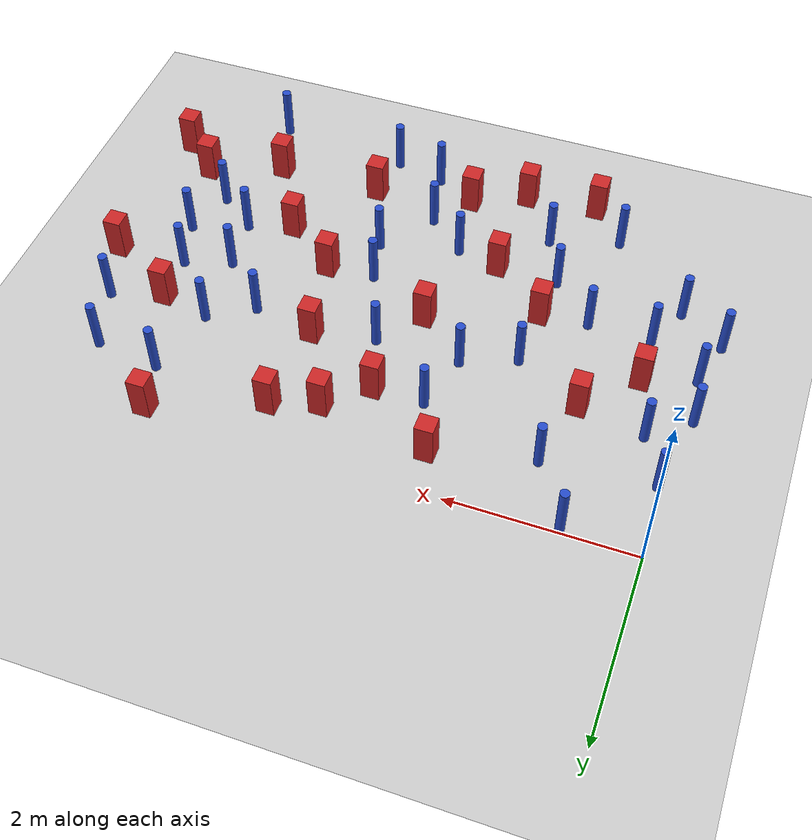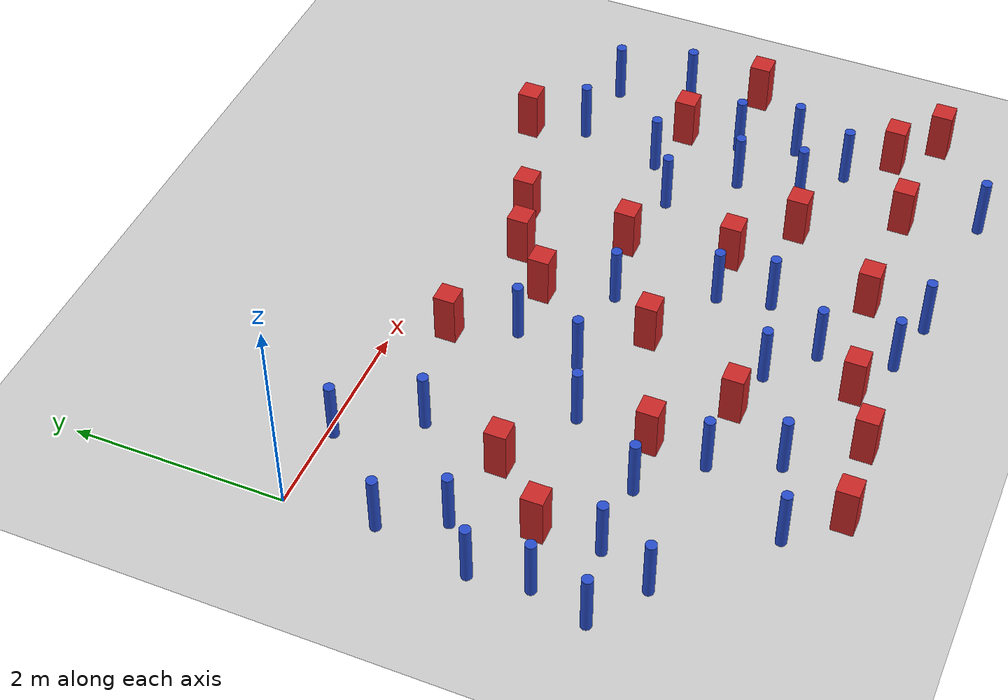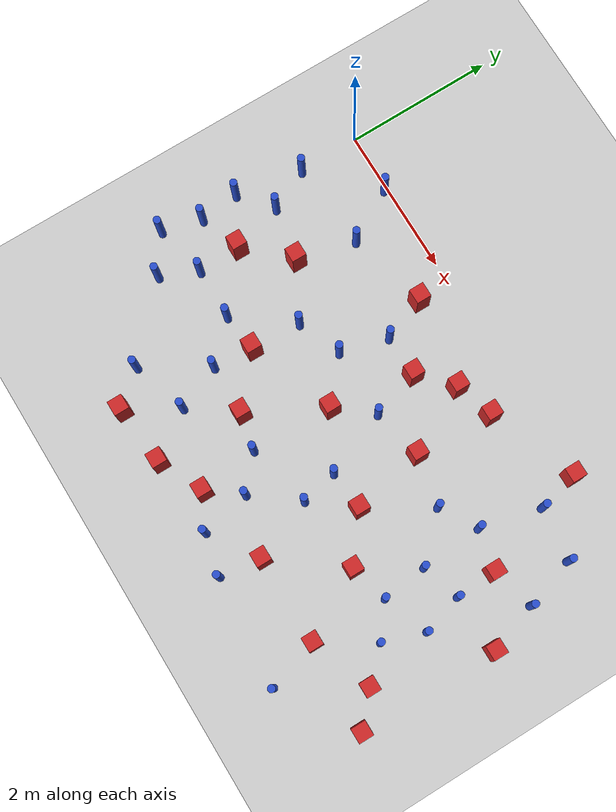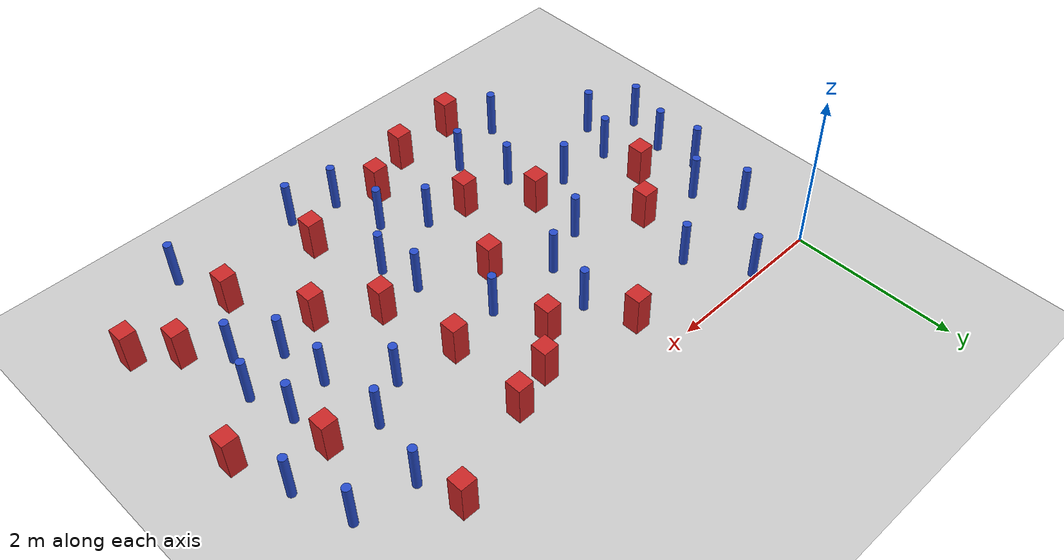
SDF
<sdf version="1.6">
 <world name="default">
  <model name="ground_plane">
   <static>1</static>
   <link name="link">
    <collision name="collision">
     <geometry><plane><normal>0 0 1</normal><size>100 100</size></plane></geometry>
     <surface><friction><ode><mu>100</mu><mu2>50</mu2></ode></friction></surface>
    </collision>
    <visual name="visual">
     <cast_shadows>0</cast_shadows>
     <geometry><plane><normal>0 0 1</normal><size>100 100</size></plane></geometry>
     <material>
      <ambient>1.0 1.0 1.0 1.0</ambient>
      <diffuse>0.8 0.8 0.8 1.0</diffuse>
      <specular>0.01 0.01 0.01 1.000000</specular>
     </material>
    </visual>
   </link>
  </model>
  <model name="NamedLocations">
   <static>true</static>
   <link name="DefaultStart"><pose>8.5 0 0 0 0 3.14</pose></link>
  </model>
  <model name="pole_obstacle6">
   <static>true</static>
   <pose>3.64192361207 -2.54882864017 7.38925637345e-09 -8.47170692798e-08 1.24976764939e-08 -1.74513093025e-07</pose>
   <link name="link">
    <pose>0 0 0.3 0 -0 0</pose>
    <inertial>
     <mass>1</mass>
     <inertia><ixx>0.145833</ixx><ixy>0</ixy><ixz>0</ixz><iyy>0.145833</iyy><iyz>0</iyz><izz>0.125</izz></inertia>
    </inertial>
    <collision name="collision">
     <geometry><cylinder><radius>0.05</radius><length>.6</length></cylinder></geometry>
    </collision>
    <visual name="visual">
     <geometry><cylinder><radius>0.05</radius><length>.6</length></cylinder></geometry>
     <material>
      <script><name>Gazebo/Blue</name><uri>file://media/materials/scripts/gazebo.material</uri></script>
     </material>
    </visual>
   </link>
  </model>
  <model name="square_post_obstacle23">
   <static>true</static>
   <pose>2.31536893464 -0.469810561932 1.91545236811e-07 -7.35059704564e-06 1.12565212e-07 2.39332434364e-05</pose>
   <link name="link">
    <pose>0 0 0.25 0 -0 0</pose>
    <inertial>
     <mass>100</mass>
     <inertia>
      <ixx>0.166667</ixx>
      <ixy>0</ixy>
      <ixz>0</ixz>
      <iyy>0.166667</iyy>
      <iyz>0</iyz>
      <izz>0.166667</izz>
     </inertia>
    </inertial>
    <collision name="collision"><geometry><box><size>.2 .2 .5</size></box></geometry></collision>
    <visual name="visual">
     <geometry><box><size>.2 .2 .5</size></box></geometry>
     <material>
      <script><name>Gazebo/Red</name><uri>file://media/materials/scripts/gazebo.material</uri></script>
     </material>
    </visual>
   </link>
  </model>
  <model name="pole_obstacle39">
   <static>true</static>
   <pose>5.88015557404 -2.59905250489 7.38925637345e-09 -8.47170692798e-08 1.24976764937e-08 -1.74513093023e-07</pose>
   <link name="link">
    <pose>0 0 0.3 0 -0 0</pose>
    <inertial>
     <mass>1</mass>
     <inertia><ixx>0.145833</ixx><ixy>0</ixy><ixz>0</ixz><iyy>0.145833</iyy><iyz>0</iyz><izz>0.125</izz></inertia>
    </inertial>
    <collision name="collision">
     <geometry><cylinder><radius>0.05</radius><length>.6</length></cylinder></geometry>
    </collision>
    <visual name="visual">
     <geometry><cylinder><radius>0.05</radius><length>.6</length></cylinder></geometry>
     <material>
      <script><name>Gazebo/Blue</name><uri>file://media/materials/scripts/gazebo.material</uri></script>
     </material>
    </visual>
   </link>
  </model>
  <model name="pole_obstacle40">
   <static>true</static>
   <pose>1.22221714783 -2.65229080241 7.38925637345e-09 -8.47170692799e-08 1.24976765053e-08 -1.74513093017e-07</pose>
   <link name="link">
    <pose>0 0 0.3 0 -0 0</pose>
    <inertial>
     <mass>1</mass>
     <inertia><ixx>0.145833</ixx><ixy>0</ixy><ixz>0</ixz><iyy>0.145833</iyy><iyz>0</iyz><izz>0.125</izz></inertia>
    </inertial>
    <collision name="collision">
     <geometry><cylinder><radius>0.05</radius><length>.6</length></cylinder></geometry>
    </collision>
    <visual name="visual">
     <geometry><cylinder><radius>0.05</radius><length>.6</length></cylinder></geometry>
     <material>
      <script><name>Gazebo/Blue</name><uri>file://media/materials/scripts/gazebo.material</uri></script>
     </material>
    </visual>
   </link>
  </model>
  <model name="pole_obstacle46">
   <static>true</static>
   <pose>5.69417588768 -3.14818561894 7.38925637345e-09 -8.47170692798e-08 1.24976764937e-08 -1.74513093023e-07</pose>
   <link name="link">
    <pose>0 0 0.3 0 -0 0</pose>
    <inertial>
     <mass>1</mass>
     <inertia><ixx>0.145833</ixx><ixy>0</ixy><ixz>0</ixz><iyy>0.145833</iyy><iyz>0</iyz><izz>0.125</izz></inertia>
    </inertial>
    <collision name="collision">
     <geometry><cylinder><radius>0.05</radius><length>.6</length></cylinder></geometry>
    </collision>
    <visual name="visual">
     <geometry><cylinder><radius>0.05</radius><length>.6</length></cylinder></geometry>
     <material>
      <script><name>Gazebo/Blue</name><uri>file://media/materials/scripts/gazebo.material</uri></script>
     </material>
    </visual>
   </link>
  </model>
  <model name="square_post_obstacle54">
   <static>true</static>
   <pose>5.20792865156 -0.0551550562109 1.91545236811e-07 -7.35059704564e-06 1.12565212e-07 2.39332434364e-05</pose>
   <link name="link">
    <pose>0 0 0.25 0 -0 0</pose>
    <inertial>
     <mass>100</mass>
     <inertia>
      <ixx>0.166667</ixx>
      <ixy>0</ixy>
      <ixz>0</ixz>
      <iyy>0.166667</iyy>
      <iyz>0</iyz>
      <izz>0.166667</izz>
     </inertia>
    </inertial>
    <collision name="collision"><geometry><box><size>.2 .2 .5</size></box></geometry></collision>
    <visual name="visual">
     <geometry><box><size>.2 .2 .5</size></box></geometry>
     <material>
      <script><name>Gazebo/Red</name><uri>file://media/materials/scripts/gazebo.material</uri></script>
     </material>
    </visual>
   </link>
  </model>
  <model name="pole_obstacle52">
   <static>true</static>
   <pose>3.29541378511 -1.68828231149 7.38925637345e-09 -8.471706928e-08 1.24976765152e-08 -1.74513093012e-07</pose>
   <link name="link">
    <pose>0 0 0.3 0 -0 0</pose>
    <inertial>
     <mass>1</mass>
     <inertia><ixx>0.145833</ixx><ixy>0</ixy><ixz>0</ixz><iyy>0.145833</iyy><iyz>0</iyz><izz>0.125</izz></inertia>
    </inertial>
    <collision name="collision">
     <geometry><cylinder><radius>0.05</radius><length>.6</length></cylinder></geometry>
    </collision>
    <visual name="visual">
     <geometry><cylinder><radius>0.05</radius><length>.6</length></cylinder></geometry>
     <material>
      <script><name>Gazebo/Blue</name><uri>file://media/materials/scripts/gazebo.material</uri></script>
     </material>
    </visual>
   </link>
  </model>
  <model name="pole_obstacle53">
   <static>true</static>
   <pose>4.67257318852 -1.67891078582 7.38925637345e-09 -8.471706928e-08 1.24976765134e-08 -1.74513093015e-07</pose>
   <link name="link">
    <pose>0 0 0.3 0 -0 0</pose>
    <inertial>
     <mass>1</mass>
     <inertia><ixx>0.145833</ixx><ixy>0</ixy><ixz>0</ixz><iyy>0.145833</iyy><iyz>0</iyz><izz>0.125</izz></inertia>
    </inertial>
    <collision name="collision">
     <geometry><cylinder><radius>0.05</radius><length>.6</length></cylinder></geometry>
    </collision>
    <visual name="visual">
     <geometry><cylinder><radius>0.05</radius><length>.6</length></cylinder></geometry>
     <material>
      <script><name>Gazebo/Blue</name><uri>file://media/materials/scripts/gazebo.material</uri></script>
     </material>
    </visual>
   </link>
  </model>
  <model name="square_post_obstacle57">
   <static>true</static>
   <pose>2.38730842185 -3.13357866615 1.91545236811e-07 -7.35059704564e-06 1.12565212e-07 2.39332434364e-05</pose>
   <link name="link">
    <pose>0 0 0.25 0 -0 0</pose>
    <inertial>
     <mass>100</mass>
     <inertia>
      <ixx>0.166667</ixx>
      <ixy>0</ixy>
      <ixz>0</ixz>
      <iyy>0.166667</iyy>
      <iyz>0</iyz>
      <izz>0.166667</izz>
     </inertia>
    </inertial>
    <collision name="collision"><geometry><box><size>.2 .2 .5</size></box></geometry></collision>
    <visual name="visual">
     <geometry><box><size>.2 .2 .5</size></box></geometry>
     <material>
      <script><name>Gazebo/Red</name><uri>file://media/materials/scripts/gazebo.material</uri></script>
     </material>
    </visual>
   </link>
  </model>
  <model name="square_post_obstacle68">
   <static>true</static>
   <pose>6.4566381577 -3.88498564547 1.91545236811e-07 -7.35059704564e-06 1.12565212e-07 2.39332434364e-05</pose>
   <link name="link">
    <pose>0 0 0.25 0 -0 0</pose>
    <inertial>
     <mass>100</mass>
     <inertia>
      <ixx>0.166667</ixx>
      <ixy>0</ixy>
      <ixz>0</ixz>
      <iyy>0.166667</iyy>
      <iyz>0</iyz>
      <izz>0.166667</izz>
     </inertia>
    </inertial>
    <collision name="collision"><geometry><box><size>.2 .2 .5</size></box></geometry></collision>
    <visual name="visual">
     <geometry><box><size>.2 .2 .5</size></box></geometry>
     <material>
      <script><name>Gazebo/Red</name><uri>file://media/materials/scripts/gazebo.material</uri></script>
     </material>
    </visual>
   </link>
  </model>
  <model name="pole_obstacle66">
   <static>true</static>
   <pose>0.303951114767 -3.13165222778 7.38925637345e-09 -8.471706928e-08 1.24976765084e-08 -1.74513093017e-07</pose>
   <link name="link">
    <pose>0 0 0.3 0 -0 0</pose>
    <inertial>
     <mass>1</mass>
     <inertia><ixx>0.145833</ixx><ixy>0</ixy><ixz>0</ixz><iyy>0.145833</iyy><iyz>0</iyz><izz>0.125</izz></inertia>
    </inertial>
    <collision name="collision">
     <geometry><cylinder><radius>0.05</radius><length>.6</length></cylinder></geometry>
    </collision>
    <visual name="visual">
     <geometry><cylinder><radius>0.05</radius><length>.6</length></cylinder></geometry>
     <material>
      <script><name>Gazebo/Blue</name><uri>file://media/materials/scripts/gazebo.material</uri></script>
     </material>
    </visual>
   </link>
  </model>
  <model name="square_post_obstacle70">
   <static>true</static>
   <pose>6.48721649348 -2.0247805811 1.91545236811e-07 -7.35059704564e-06 1.12565212e-07 2.39332434364e-05</pose>
   <link name="link">
    <pose>0 0 0.25 0 -0 0</pose>
    <inertial>
     <mass>100</mass>
     <inertia>
      <ixx>0.166667</ixx>
      <ixy>0</ixy>
      <ixz>0</ixz>
      <iyy>0.166667</iyy>
      <iyz>0</iyz>
      <izz>0.166667</izz>
     </inertia>
    </inertial>
    <collision name="collision"><geometry><box><size>.2 .2 .5</size></box></geometry></collision>
    <visual name="visual">
     <geometry><box><size>.2 .2 .5</size></box></geometry>
     <material>
      <script><name>Gazebo/Red</name><uri>file://media/materials/scripts/gazebo.material</uri></script>
     </material>
    </visual>
   </link>
  </model>
  <model name="square_post_obstacle71">
   <static>true</static>
   <pose>5.69226600826 -1.51869303826 1.91545236811e-07 -7.35059704564e-06 1.12565212e-07 2.39332434364e-05</pose>
   <link name="link">
    <pose>0 0 0.25 0 -0 0</pose>
    <inertial>
     <mass>100</mass>
     <inertia>
      <ixx>0.166667</ixx>
      <ixy>0</ixy>
      <ixz>0</ixz>
      <iyy>0.166667</iyy>
      <iyz>0</iyz>
      <izz>0.166667</izz>
     </inertia>
    </inertial>
    <collision name="collision"><geometry><box><size>.2 .2 .5</size></box></geometry></collision>
    <visual name="visual">
     <geometry><box><size>.2 .2 .5</size></box></geometry>
     <material>
      <script><name>Gazebo/Red</name><uri>file://media/materials/scripts/gazebo.material</uri></script>
     </material>
    </visual>
   </link>
  </model>
  <model name="pole_obstacle69">
   <static>true</static>
   <pose>3.99299117204 -4.40413238102 7.38925637345e-09 -8.47170692798e-08 1.24976764915e-08 -1.74513093026e-07</pose>
   <link name="link">
    <pose>0 0 0.3 0 -0 0</pose>
    <inertial>
     <mass>1</mass>
     <inertia><ixx>0.145833</ixx><ixy>0</ixy><ixz>0</ixz><iyy>0.145833</iyy><iyz>0</iyz><izz>0.125</izz></inertia>
    </inertial>
    <collision name="collision">
     <geometry><cylinder><radius>0.05</radius><length>.6</length></cylinder></geometry>
    </collision>
    <visual name="visual">
     <geometry><cylinder><radius>0.05</radius><length>.6</length></cylinder></geometry>
     <material>
      <script><name>Gazebo/Blue</name><uri>file://media/materials/scripts/gazebo.material</uri></script>
     </material>
    </visual>
   </link>
  </model>
  <model name="pole_obstacle78">
   <static>true</static>
   <pose>1.70363552262 -3.12776006202 7.38925637345e-09 -8.47170692799e-08 1.24976765053e-08 -1.74513093017e-07</pose>
   <link name="link">
    <pose>0 0 0.3 0 -0 0</pose>
    <inertial>
     <mass>1</mass>
     <inertia><ixx>0.145833</ixx><ixy>0</ixy><ixz>0</ixz><iyy>0.145833</iyy><iyz>0</iyz><izz>0.125</izz></inertia>
    </inertial>
    <collision name="collision">
     <geometry><cylinder><radius>0.05</radius><length>.6</length></cylinder></geometry>
    </collision>
    <visual name="visual">
     <geometry><cylinder><radius>0.05</radius><length>.6</length></cylinder></geometry>
     <material>
      <script><name>Gazebo/Blue</name><uri>file://media/materials/scripts/gazebo.material</uri></script>
     </material>
    </visual>
   </link>
  </model>
  <model name="square_post_obstacle79">
   <static>true</static>
   <pose>2.97877043364 -4.03758136248 1.91545236811e-07 -7.35059704564e-06 1.12565212e-07 2.39332434364e-05</pose>
   <link name="link">
    <pose>0 0 0.25 0 -0 0</pose>
    <inertial>
     <mass>100</mass>
     <inertia>
      <ixx>0.166667</ixx>
      <ixy>0</ixy>
      <ixz>0</ixz>
      <iyy>0.166667</iyy>
      <iyz>0</iyz>
      <izz>0.166667</izz>
     </inertia>
    </inertial>
    <collision name="collision"><geometry><box><size>.2 .2 .5</size></box></geometry></collision>
    <visual name="visual">
     <geometry><box><size>.2 .2 .5</size></box></geometry>
     <material>
      <script><name>Gazebo/Red</name><uri>file://media/materials/scripts/gazebo.material</uri></script>
     </material>
    </visual>
   </link>
  </model>
  <model name="pole_obstacle82">
   <static>true</static>
   <pose>5.47488946623 -4.52866031302 7.38925637345e-09 -8.47170692796e-08 1.24976764786e-08 -1.74513093032e-07</pose>
   <link name="link">
    <pose>0 0 0.3 0 -0 0</pose>
    <inertial>
     <mass>1</mass>
     <inertia><ixx>0.145833</ixx><ixy>0</ixy><ixz>0</ixz><iyy>0.145833</iyy><iyz>0</iyz><izz>0.125</izz></inertia>
    </inertial>
    <collision name="collision">
     <geometry><cylinder><radius>0.05</radius><length>.6</length></cylinder></geometry>
    </collision>
    <visual name="visual">
     <geometry><cylinder><radius>0.05</radius><length>.6</length></cylinder></geometry>
     <material>
      <script><name>Gazebo/Blue</name><uri>file://media/materials/scripts/gazebo.material</uri></script>
     </material>
    </visual>
   </link>
  </model>
  <model name="pole_obstacle84">
   <static>true</static>
   <pose>5.35058363693 -0.583180343912 7.38925637345e-09 -8.47170692799e-08 1.24976765038e-08 -1.74513093018e-07</pose>
   <link name="link">
    <pose>0 0 0.3 0 -0 0</pose>
    <inertial>
     <mass>1</mass>
     <inertia><ixx>0.145833</ixx><ixy>0</ixy><ixz>0</ixz><iyy>0.145833</iyy><iyz>0</iyz><izz>0.125</izz></inertia>
    </inertial>
    <collision name="collision">
     <geometry><cylinder><radius>0.05</radius><length>.6</length></cylinder></geometry>
    </collision>
    <visual name="visual">
     <geometry><cylinder><radius>0.05</radius><length>.6</length></cylinder></geometry>
     <material>
      <script><name>Gazebo/Blue</name><uri>file://media/materials/scripts/gazebo.material</uri></script>
     </material>
    </visual>
   </link>
  </model>
  <model name="square_post_obstacle83">
   <static>true</static>
   <pose>5.25382740143 -3.83775060175 1.91545236811e-07 -7.35059704564e-06 1.12565212e-07 2.39332434364e-05</pose>
   <link name="link">
    <pose>0 0 0.25 0 -0 0</pose>
    <inertial>
     <mass>100</mass>
     <inertia>
      <ixx>0.166667</ixx>
      <ixy>0</ixy>
      <ixz>0</ixz>
      <iyy>0.166667</iyy>
      <iyz>0</iyz>
      <izz>0.166667</izz>
     </inertia>
    </inertial>
    <collision name="collision"><geometry><box><size>.2 .2 .5</size></box></geometry></collision>
    <visual name="visual">
     <geometry><box><size>.2 .2 .5</size></box></geometry>
     <material>
      <script><name>Gazebo/Red</name><uri>file://media/materials/scripts/gazebo.material</uri></script>
     </material>
    </visual>
   </link>
  </model>
  <model name="pole_obstacle95">
   <static>true</static>
   <pose>0.822893340495 -0.054897305519 7.38925637345e-09 -8.471706928e-08 1.24976765141e-08 -1.74513093012e-07</pose>
   <link name="link">
    <pose>0 0 0.3 0 -0 0</pose>
    <inertial>
     <mass>1</mass>
     <inertia><ixx>0.145833</ixx><ixy>0</ixy><ixz>0</ixz><iyy>0.145833</iyy><iyz>0</iyz><izz>0.125</izz></inertia>
    </inertial>
    <collision name="collision">
     <geometry><cylinder><radius>0.05</radius><length>.6</length></cylinder></geometry>
    </collision>
    <visual name="visual">
     <geometry><cylinder><radius>0.05</radius><length>.6</length></cylinder></geometry>
     <material>
      <script><name>Gazebo/Blue</name><uri>file://media/materials/scripts/gazebo.material</uri></script>
     </material>
    </visual>
   </link>
  </model>
  <model name="pole_obstacle98">
   <static>true</static>
   <pose>1.78213947585 -1.91859487326 7.38925637345e-09 -8.471706928e-08 1.24976765079e-08 -1.74513093017e-07</pose>
   <link name="link">
    <pose>0 0 0.3 0 -0 0</pose>
    <inertial>
     <mass>1</mass>
     <inertia><ixx>0.145833</ixx><ixy>0</ixy><ixz>0</ixz><iyy>0.145833</iyy><iyz>0</iyz><izz>0.125</izz></inertia>
    </inertial>
    <collision name="collision">
     <geometry><cylinder><radius>0.05</radius><length>.6</length></cylinder></geometry>
    </collision>
    <visual name="visual">
     <geometry><cylinder><radius>0.05</radius><length>.6</length></cylinder></geometry>
     <material>
      <script><name>Gazebo/Blue</name><uri>file://media/materials/scripts/gazebo.material</uri></script>
     </material>
    </visual>
   </link>
  </model>
  <model name="pole_obstacle99">
   <static>true</static>
   <pose>1.22931058237 -0.733390300946 7.38925637345e-09 -8.47170692799e-08 1.24976765075e-08 -1.74513093017e-07</pose>
   <link name="link">
    <pose>0 0 0.3 0 -0 0</pose>
    <inertial>
     <mass>1</mass>
     <inertia><ixx>0.145833</ixx><ixy>0</ixy><ixz>0</ixz><iyy>0.145833</iyy><iyz>0</iyz><izz>0.125</izz></inertia>
    </inertial>
    <collision name="collision">
     <geometry><cylinder><radius>0.05</radius><length>.6</length></cylinder></geometry>
    </collision>
    <visual name="visual">
     <geometry><cylinder><radius>0.05</radius><length>.6</length></cylinder></geometry>
     <material>
      <script><name>Gazebo/Blue</name><uri>file://media/materials/scripts/gazebo.material</uri></script>
     </material>
    </visual>
   </link>
  </model>
  <model name="square_post_obstacle105">
   <static>true</static>
   <pose>3.51741922638 -0.662481717735 1.91545236811e-07 -7.35059704564e-06 1.12565212e-07 2.39332434364e-05</pose>
   <link name="link">
    <pose>0 0 0.25 0 -0 0</pose>
    <inertial>
     <mass>100</mass>
     <inertia>
      <ixx>0.166667</ixx>
      <ixy>0</ixy>
      <ixz>0</ixz>
      <iyy>0.166667</iyy>
      <iyz>0</iyz>
      <izz>0.166667</izz>
     </inertia>
    </inertial>
    <collision name="collision"><geometry><box><size>.2 .2 .5</size></box></geometry></collision>
    <visual name="visual">
     <geometry><box><size>.2 .2 .5</size></box></geometry>
     <material>
      <script><name>Gazebo/Red</name><uri>file://media/materials/scripts/gazebo.material</uri></script>
     </material>
    </visual>
   </link>
  </model>
  <model name="square_post_obstacle107">
   <static>true</static>
   <pose>4.07290366863 -3.84822145737 1.91545236811e-07 -7.35059704564e-06 1.12565212e-07 2.39332434364e-05</pose>
   <link name="link">
    <pose>0 0 0.25 0 -0 0</pose>
    <inertial>
     <mass>100</mass>
     <inertia>
      <ixx>0.166667</ixx>
      <ixy>0</ixy>
      <ixz>0</ixz>
      <iyy>0.166667</iyy>
      <iyz>0</iyz>
      <izz>0.166667</izz>
     </inertia>
    </inertial>
    <collision name="collision"><geometry><box><size>.2 .2 .5</size></box></geometry></collision>
    <visual name="visual">
     <geometry><box><size>.2 .2 .5</size></box></geometry>
     <material>
      <script><name>Gazebo/Red</name><uri>file://media/materials/scripts/gazebo.material</uri></script>
     </material>
    </visual>
   </link>
  </model>
  <model name="pole_obstacle133">
   <static>true</static>
   <pose>5.20709458268 -2.21959510554 7.38925637345e-09 -8.47170692798e-08 1.24976764937e-08 -1.74513093023e-07</pose>
   <link name="link">
    <pose>0 0 0.3 0 -0 0</pose>
    <inertial>
     <mass>1</mass>
     <inertia><ixx>0.145833</ixx><ixy>0</ixy><ixz>0</ixz><iyy>0.145833</iyy><iyz>0</iyz><izz>0.125</izz></inertia>
    </inertial>
    <collision name="collision">
     <geometry><cylinder><radius>0.05</radius><length>.6</length></cylinder></geometry>
    </collision>
    <visual name="visual">
     <geometry><cylinder><radius>0.05</radius><length>.6</length></cylinder></geometry>
     <material>
      <script><name>Gazebo/Blue</name><uri>file://media/materials/scripts/gazebo.material</uri></script>
     </material>
    </visual>
   </link>
  </model>
  <model name="square_post_obstacle115">
   <static>true</static>
   <pose>2.37719224849 -4.31599421271 1.91545236811e-07 -7.35059704564e-06 1.12565212e-07 2.39332434364e-05</pose>
   <link name="link">
    <pose>0 0 0.25 0 -0 0</pose>
    <inertial>
     <mass>100</mass>
     <inertia>
      <ixx>0.166667</ixx>
      <ixy>0</ixy>
      <ixz>0</ixz>
      <iyy>0.166667</iyy>
      <iyz>0</iyz>
      <izz>0.166667</izz>
     </inertia>
    </inertial>
    <collision name="collision"><geometry><box><size>.2 .2 .5</size></box></geometry></collision>
    <visual name="visual">
     <geometry><box><size>.2 .2 .5</size></box></geometry>
     <material>
      <script><name>Gazebo/Red</name><uri>file://media/materials/scripts/gazebo.material</uri></script>
     </material>
    </visual>
   </link>
  </model>
  <model name="square_post_obstacle117">
   <static>true</static>
   <pose>4.0329093245 -0.503751614099 1.91545236811e-07 -7.35059704564e-06 1.12565212e-07 2.39332434364e-05</pose>
   <link name="link">
    <pose>0 0 0.25 0 -0 0</pose>
    <inertial>
     <mass>100</mass>
     <inertia>
      <ixx>0.166667</ixx>
      <ixy>0</ixy>
      <ixz>0</ixz>
      <iyy>0.166667</iyy>
      <iyz>0</iyz>
      <izz>0.166667</izz>
     </inertia>
    </inertial>
    <collision name="collision"><geometry><box><size>.2 .2 .5</size></box></geometry></collision>
    <visual name="visual">
     <geometry><box><size>.2 .2 .5</size></box></geometry>
     <material>
      <script><name>Gazebo/Red</name><uri>file://media/materials/scripts/gazebo.material</uri></script>
     </material>
    </visual>
   </link>
  </model>
  <model name="pole_obstacle138">
   <static>true</static>
   <pose>-0.0546539643449 -2.26104591455 7.38925637345e-09 -8.47170692793e-08 1.24976764354e-08 -1.74513093044e-07</pose>
   <link name="link">
    <pose>0 0 0.3 0 -0 0</pose>
    <inertial>
     <mass>1</mass>
     <inertia><ixx>0.145833</ixx><ixy>0</ixy><ixz>0</ixz><iyy>0.145833</iyy><iyz>0</iyz><izz>0.125</izz></inertia>
    </inertial>
    <collision name="collision">
     <geometry><cylinder><radius>0.05</radius><length>.6</length></cylinder></geometry>
    </collision>
    <visual name="visual">
     <geometry><cylinder><radius>0.05</radius><length>.6</length></cylinder></geometry>
     <material>
      <script><name>Gazebo/Blue</name><uri>file://media/materials/scripts/gazebo.material</uri></script>
     </material>
    </visual>
   </link>
  </model>
  <model name="pole_obstacle139">
   <static>true</static>
   <pose>-0.198055426558 -2.79434936782 7.38925637345e-09 -8.471706928e-08 1.2497676511e-08 -1.74513093013e-07</pose>
   <link name="link">
    <pose>0 0 0.3 0 -0 0</pose>
    <inertial>
     <mass>1</mass>
     <inertia><ixx>0.145833</ixx><ixy>0</ixy><ixz>0</ixz><iyy>0.145833</iyy><iyz>0</iyz><izz>0.125</izz></inertia>
    </inertial>
    <collision name="collision">
     <geometry><cylinder><radius>0.05</radius><length>.6</length></cylinder></geometry>
    </collision>
    <visual name="visual">
     <geometry><cylinder><radius>0.05</radius><length>.6</length></cylinder></geometry>
     <material>
      <script><name>Gazebo/Blue</name><uri>file://media/materials/scripts/gazebo.material</uri></script>
     </material>
    </visual>
   </link>
  </model>
  <model name="square_post_obstacle136">
   <static>true</static>
   <pose>6.06303236838 -3.53170047811 1.91545236811e-07 -7.35059704564e-06 1.12565212e-07 2.39332434364e-05</pose>
   <link name="link">
    <pose>0 0 0.25 0 -0 0</pose>
    <inertial>
     <mass>100</mass>
     <inertia>
      <ixx>0.166667</ixx>
      <ixy>0</ixy>
      <ixz>0</ixz>
      <iyy>0.166667</iyy>
      <iyz>0</iyz>
      <izz>0.166667</izz>
     </inertia>
    </inertial>
    <collision name="collision"><geometry><box><size>.2 .2 .5</size></box></geometry></collision>
    <visual name="visual">
     <geometry><box><size>.2 .2 .5</size></box></geometry>
     <material>
      <script><name>Gazebo/Red</name><uri>file://media/materials/scripts/gazebo.material</uri></script>
     </material>
    </visual>
   </link>
  </model>
  <model name="pole_obstacle146">
   <static>true</static>
   <pose>0.0465483809169 -0.830089498684 7.38925637345e-09 -8.47170692799e-08 1.24976765002e-08 -1.74513093019e-07</pose>
   <link name="link">
    <pose>0 0 0.3 0 -0 0</pose>
    <inertial>
     <mass>1</mass>
     <inertia><ixx>0.145833</ixx><ixy>0</ixy><ixz>0</ixz><iyy>0.145833</iyy><iyz>0</iyz><izz>0.125</izz></inertia>
    </inertial>
    <collision name="collision">
     <geometry><cylinder><radius>0.05</radius><length>.6</length></cylinder></geometry>
    </collision>
    <visual name="visual">
     <geometry><cylinder><radius>0.05</radius><length>.6</length></cylinder></geometry>
     <material>
      <script><name>Gazebo/Blue</name><uri>file://media/materials/scripts/gazebo.material</uri></script>
     </material>
    </visual>
   </link>
  </model>
  <model name="square_post_obstacle138">
   <static>true</static>
   <pose>2.90922756287 -2.15371437276 1.91545236811e-07 -7.35059704564e-06 1.12565212e-07 2.39332434364e-05</pose>
   <link name="link">
    <pose>0 0 0.25 0 -0 0</pose>
    <inertial>
     <mass>100</mass>
     <inertia>
      <ixx>0.166667</ixx>
      <ixy>0</ixy>
      <ixz>0</ixz>
      <iyy>0.166667</iyy>
      <iyz>0</iyz>
      <izz>0.166667</izz>
     </inertia>
    </inertial>
    <collision name="collision"><geometry><box><size>.2 .2 .5</size></box></geometry></collision>
    <visual name="visual">
     <geometry><box><size>.2 .2 .5</size></box></geometry>
     <material>
      <script><name>Gazebo/Red</name><uri>file://media/materials/scripts/gazebo.material</uri></script>
     </material>
    </visual>
   </link>
  </model>
  <model name="pole_obstacle154">
   <static>true</static>
   <pose>5.27564371666 -2.82294772019 7.38925637345e-09 -8.47170692798e-08 1.24976764937e-08 -1.74513093023e-07</pose>
   <link name="link">
    <pose>0 0 0.3 0 -0 0</pose>
    <inertial>
     <mass>1</mass>
     <inertia><ixx>0.145833</ixx><ixy>0</ixy><ixz>0</ixz><iyy>0.145833</iyy><iyz>0</iyz><izz>0.125</izz></inertia>
    </inertial>
    <collision name="collision">
     <geometry><cylinder><radius>0.05</radius><length>.6</length></cylinder></geometry>
    </collision>
    <visual name="visual">
     <geometry><cylinder><radius>0.05</radius><length>.6</length></cylinder></geometry>
     <material>
      <script><name>Gazebo/Blue</name><uri>file://media/materials/scripts/gazebo.material</uri></script>
     </material>
    </visual>
   </link>
  </model>
  <model name="pole_obstacle155">
   <static>true</static>
   <pose>0.527161808143 -2.63940762929 7.38925637345e-09 -8.471706928e-08 1.2497676512e-08 -1.74513093015e-07</pose>
   <link name="link">
    <pose>0 0 0.3 0 -0 0</pose>
    <inertial>
     <mass>1</mass>
     <inertia><ixx>0.145833</ixx><ixy>0</ixy><ixz>0</ixz><iyy>0.145833</iyy><iyz>0</iyz><izz>0.125</izz></inertia>
    </inertial>
    <collision name="collision">
     <geometry><cylinder><radius>0.05</radius><length>.6</length></cylinder></geometry>
    </collision>
    <visual name="visual">
     <geometry><cylinder><radius>0.05</radius><length>.6</length></cylinder></geometry>
     <material>
      <script><name>Gazebo/Blue</name><uri>file://media/materials/scripts/gazebo.material</uri></script>
     </material>
    </visual>
   </link>
  </model>
  <model name="square_post_obstacle145">
   <static>true</static>
   <pose>4.75649115531 -2.95965881846 1.91545236811e-07 -7.35059704564e-06 1.12565212e-07 2.39332434364e-05</pose>
   <link name="link">
    <pose>0 0 0.25 0 -0 0</pose>
    <inertial>
     <mass>100</mass>
     <inertia>
      <ixx>0.166667</ixx>
      <ixy>0</ixy>
      <ixz>0</ixz>
      <iyy>0.166667</iyy>
      <iyz>0</iyz>
      <izz>0.166667</izz>
     </inertia>
    </inertial>
    <collision name="collision"><geometry><box><size>.2 .2 .5</size></box></geometry></collision>
    <visual name="visual">
     <geometry><box><size>.2 .2 .5</size></box></geometry>
     <material>
      <script><name>Gazebo/Red</name><uri>file://media/materials/scripts/gazebo.material</uri></script>
     </material>
    </visual>
   </link>
  </model>
  <model name="pole_obstacle156">
   <static>true</static>
   <pose>2.87598240309 -3.24728168829 7.38925637345e-09 -8.47170692798e-08 1.24976764939e-08 -1.74513093025e-07</pose>
   <link name="link">
    <pose>0 0 0.3 0 -0 0</pose>
    <inertial>
     <mass>1</mass>
     <inertia><ixx>0.145833</ixx><ixy>0</ixy><ixz>0</ixz><iyy>0.145833</iyy><iyz>0</iyz><izz>0.125</izz></inertia>
    </inertial>
    <collision name="collision">
     <geometry><cylinder><radius>0.05</radius><length>.6</length></cylinder></geometry>
    </collision>
    <visual name="visual">
     <geometry><cylinder><radius>0.05</radius><length>.6</length></cylinder></geometry>
     <material>
      <script><name>Gazebo/Blue</name><uri>file://media/materials/scripts/gazebo.material</uri></script>
     </material>
    </visual>
   </link>
  </model>
  <model name="square_post_obstacle148">
   <static>true</static>
   <pose>3.97481436272 -1.54171545645 1.91545236811e-07 -7.35059704564e-06 1.12565212e-07 2.39332434364e-05</pose>
   <link name="link">
    <pose>0 0 0.25 0 -0 0</pose>
    <inertial>
     <mass>100</mass>
     <inertia>
      <ixx>0.166667</ixx>
      <ixy>0</ixy>
      <ixz>0</ixz>
      <iyy>0.166667</iyy>
      <iyz>0</iyz>
      <izz>0.166667</izz>
     </inertia>
    </inertial>
    <collision name="collision"><geometry><box><size>.2 .2 .5</size></box></geometry></collision>
    <visual name="visual">
     <geometry><box><size>.2 .2 .5</size></box></geometry>
     <material>
      <script><name>Gazebo/Red</name><uri>file://media/materials/scripts/gazebo.material</uri></script>
     </material>
    </visual>
   </link>
  </model>
  <model name="pole_obstacle168">
   <static>true</static>
   <pose>3.74978112454 -3.03889990552 7.38925637345e-09 -8.47170692798e-08 1.24976764939e-08 -1.74513093025e-07</pose>
   <link name="link">
    <pose>0 0 0.3 0 -0 0</pose>
    <inertial>
     <mass>1</mass>
     <inertia><ixx>0.145833</ixx><ixy>0</ixy><ixz>0</ixz><iyy>0.145833</iyy><iyz>0</iyz><izz>0.125</izz></inertia>
    </inertial>
    <collision name="collision">
     <geometry><cylinder><radius>0.05</radius><length>.6</length></cylinder></geometry>
    </collision>
    <visual name="visual">
     <geometry><cylinder><radius>0.05</radius><length>.6</length></cylinder></geometry>
     <material>
      <script><name>Gazebo/Blue</name><uri>file://media/materials/scripts/gazebo.material</uri></script>
     </material>
    </visual>
   </link>
  </model>
  <model name="pole_obstacle173">
   <static>true</static>
   <pose>2.36726141244 -1.68775591782 7.38925637345e-09 -8.471706928e-08 1.24976765152e-08 -1.74513093012e-07</pose>
   <link name="link">
    <pose>0 0 0.3 0 -0 0</pose>
    <inertial>
     <mass>1</mass>
     <inertia><ixx>0.145833</ixx><ixy>0</ixy><ixz>0</ixz><iyy>0.145833</iyy><iyz>0</iyz><izz>0.125</izz></inertia>
    </inertial>
    <collision name="collision">
     <geometry><cylinder><radius>0.05</radius><length>.6</length></cylinder></geometry>
    </collision>
    <visual name="visual">
     <geometry><cylinder><radius>0.05</radius><length>.6</length></cylinder></geometry>
     <material>
      <script><name>Gazebo/Blue</name><uri>file://media/materials/scripts/gazebo.material</uri></script>
     </material>
    </visual>
   </link>
  </model>
  <model name="pole_obstacle174">
   <static>true</static>
   <pose>3.30008242205 -3.61621354548 7.38925637345e-09 -8.47170692798e-08 1.24976764939e-08 -1.74513093025e-07</pose>
   <link name="link">
    <pose>0 0 0.3 0 -0 0</pose>
    <inertial>
     <mass>1</mass>
     <inertia><ixx>0.145833</ixx><ixy>0</ixy><ixz>0</ixz><iyy>0.145833</iyy><iyz>0</iyz><izz>0.125</izz></inertia>
    </inertial>
    <collision name="collision">
     <geometry><cylinder><radius>0.05</radius><length>.6</length></cylinder></geometry>
    </collision>
    <visual name="visual">
     <geometry><cylinder><radius>0.05</radius><length>.6</length></cylinder></geometry>
     <material>
      <script><name>Gazebo/Blue</name><uri>file://media/materials/scripts/gazebo.material</uri></script>
     </material>
    </visual>
   </link>
  </model>
  <model name="pole_obstacle175">
   <static>true</static>
   <pose>6.06344958191 -0.676351217938 7.38925637345e-09 -8.47170692799e-08 1.24976765038e-08 -1.74513093018e-07</pose>
   <link name="link">
    <pose>0 0 0.3 0 -0 0</pose>
    <inertial>
     <mass>1</mass>
     <inertia><ixx>0.145833</ixx><ixy>0</ixy><ixz>0</ixz><iyy>0.145833</iyy><iyz>0</iyz><izz>0.125</izz></inertia>
    </inertial>
    <collision name="collision">
     <geometry><cylinder><radius>0.05</radius><length>.6</length></cylinder></geometry>
    </collision>
    <visual name="visual">
     <geometry><cylinder><radius>0.05</radius><length>.6</length></cylinder></geometry>
     <material>
      <script><name>Gazebo/Blue</name><uri>file://media/materials/scripts/gazebo.material</uri></script>
     </material>
    </visual>
   </link>
  </model>
  <model name="pole_obstacle178">
   <static>true</static>
   <pose>5.72280791236 -2.05802023536 7.38925637345e-09 -8.47170692798e-08 1.24976764937e-08 -1.74513093023e-07</pose>
   <link name="link">
    <pose>0 0 0.3 0 -0 0</pose>
    <inertial>
     <mass>1</mass>
     <inertia><ixx>0.145833</ixx><ixy>0</ixy><ixz>0</ixz><iyy>0.145833</iyy><iyz>0</iyz><izz>0.125</izz></inertia>
    </inertial>
    <collision name="collision">
     <geometry><cylinder><radius>0.05</radius><length>.6</length></cylinder></geometry>
    </collision>
    <visual name="visual">
     <geometry><cylinder><radius>0.05</radius><length>.6</length></cylinder></geometry>
     <material>
      <script><name>Gazebo/Blue</name><uri>file://media/materials/scripts/gazebo.material</uri></script>
     </material>
    </visual>
   </link>
  </model>
  <model name="pole_obstacle185">
   <static>true</static>
   <pose>6.27629976087 -1.35828330308 7.38925637345e-09 -8.471706928e-08 1.24976765134e-08 -1.74513093015e-07</pose>
   <link name="link">
    <pose>0 0 0.3 0 -0 0</pose>
    <inertial>
     <mass>1</mass>
     <inertia><ixx>0.145833</ixx><ixy>0</ixy><ixz>0</ixz><iyy>0.145833</iyy><iyz>0</iyz><izz>0.125</izz></inertia>
    </inertial>
    <collision name="collision">
     <geometry><cylinder><radius>0.05</radius><length>.6</length></cylinder></geometry>
    </collision>
    <visual name="visual">
     <geometry><cylinder><radius>0.05</radius><length>.6</length></cylinder></geometry>
     <material>
      <script><name>Gazebo/Blue</name><uri>file://media/materials/scripts/gazebo.material</uri></script>
     </material>
    </visual>
   </link>
  </model>
  <model name="pole_obstacle187">
   <static>true</static>
   <pose>1.95077971702 -3.72667722277 7.38925637345e-09 -8.47170692799e-08 1.24976765015e-08 -1.74513093019e-07</pose>
   <link name="link">
    <pose>0 0 0.3 0 -0 0</pose>
    <inertial>
     <mass>1</mass>
     <inertia><ixx>0.145833</ixx><ixy>0</ixy><ixz>0</ixz><iyy>0.145833</iyy><iyz>0</iyz><izz>0.125</izz></inertia>
    </inertial>
    <collision name="collision">
     <geometry><cylinder><radius>0.05</radius><length>.6</length></cylinder></geometry>
    </collision>
    <visual name="visual">
     <geometry><cylinder><radius>0.05</radius><length>.6</length></cylinder></geometry>
     <material>
      <script><name>Gazebo/Blue</name><uri>file://media/materials/scripts/gazebo.material</uri></script>
     </material>
    </visual>
   </link>
  </model>
  <model name="square_post_obstacle179">
   <static>true</static>
   <pose>1.57223722441 -4.38551051589 1.91545236811e-07 -7.35059704564e-06 1.12565212e-07 2.39332434364e-05</pose>
   <link name="link">
    <pose>0 0 0.25 0 -0 0</pose>
    <inertial>
     <mass>100</mass>
     <inertia>
      <ixx>0.166667</ixx>
      <ixy>0</ixy>
      <ixz>0</ixz>
      <iyy>0.166667</iyy>
      <iyz>0</iyz>
      <izz>0.166667</izz>
     </inertia>
    </inertial>
    <collision name="collision"><geometry><box><size>.2 .2 .5</size></box></geometry></collision>
    <visual name="visual">
     <geometry><box><size>.2 .2 .5</size></box></geometry>
     <material>
      <script><name>Gazebo/Red</name><uri>file://media/materials/scripts/gazebo.material</uri></script>
     </material>
    </visual>
   </link>
  </model>
  <model name="square_post_obstacle188">
   <static>true</static>
   <pose>0.51200838907 -2.06873134234 1.91545236811e-07 -7.35059704564e-06 1.12565212e-07 2.39332434364e-05</pose>
   <link name="link">
    <pose>0 0 0.25 0 -0 0</pose>
    <inertial>
     <mass>100</mass>
     <inertia>
      <ixx>0.166667</ixx>
      <ixy>0</ixy>
      <ixz>0</ixz>
      <iyy>0.166667</iyy>
      <iyz>0</iyz>
      <izz>0.166667</izz>
     </inertia>
    </inertial>
    <collision name="collision"><geometry><box><size>.2 .2 .5</size></box></geometry></collision>
    <visual name="visual">
     <geometry><box><size>.2 .2 .5</size></box></geometry>
     <material>
      <script><name>Gazebo/Red</name><uri>file://media/materials/scripts/gazebo.material</uri></script>
     </material>
    </visual>
   </link>
  </model>
  <model name="square_post_obstacle189">
   <static>true</static>
   <pose>1.75125433451 -2.59496812492 1.91545236811e-07 -7.35059704564e-06 1.12565212e-07 2.39332434364e-05</pose>
   <link name="link">
    <pose>0 0 0.25 0 -0 0</pose>
    <inertial>
     <mass>100</mass>
     <inertia>
      <ixx>0.166667</ixx>
      <ixy>0</ixy>
      <ixz>0</ixz>
      <iyy>0.166667</iyy>
      <iyz>0</iyz>
      <izz>0.166667</izz>
     </inertia>
    </inertial>
    <collision name="collision"><geometry><box><size>.2 .2 .5</size></box></geometry></collision>
    <visual name="visual">
     <geometry><box><size>.2 .2 .5</size></box></geometry>
     <material>
      <script><name>Gazebo/Red</name><uri>file://media/materials/scripts/gazebo.material</uri></script>
     </material>
    </visual>
   </link>
  </model>
  <model name="square_post_obstacle192">
   <static>true</static>
   <pose>1.03899930628 -1.516736794 1.91545236811e-07 -7.35059704564e-06 1.12565212e-07 2.39332434364e-05</pose>
   <link name="link">
    <pose>0 0 0.25 0 -0 0</pose>
    <inertial>
     <mass>100</mass>
     <inertia>
      <ixx>0.166667</ixx>
      <ixy>0</ixy>
      <ixz>0</ixz>
      <iyy>0.166667</iyy>
      <iyz>0</iyz>
      <izz>0.166667</izz>
     </inertia>
    </inertial>
    <collision name="collision"><geometry><box><size>.2 .2 .5</size></box></geometry></collision>
    <visual name="visual">
     <geometry><box><size>.2 .2 .5</size></box></geometry>
     <material>
      <script><name>Gazebo/Red</name><uri>file://media/materials/scripts/gazebo.material</uri></script>
     </material>
    </visual>
   </link>
  </model>
  <model name="square_post_obstacle193">
   <static>true</static>
   <pose>3.09362311018 -1.04745135521 1.91545236811e-07 -7.35059704564e-06 1.12565212e-07 2.39332434364e-05</pose>
   <link name="link">
    <pose>0 0 0.25 0 -0 0</pose>
    <inertial>
     <mass>100</mass>
     <inertia>
      <ixx>0.166667</ixx>
      <ixy>0</ixy>
      <ixz>0</ixz>
      <iyy>0.166667</iyy>
      <iyz>0</iyz>
      <izz>0.166667</izz>
     </inertia>
    </inertial>
    <collision name="collision"><geometry><box><size>.2 .2 .5</size></box></geometry></collision>
    <visual name="visual">
     <geometry><box><size>.2 .2 .5</size></box></geometry>
     <material>
      <script><name>Gazebo/Red</name><uri>file://media/materials/scripts/gazebo.material</uri></script>
     </material>
    </visual>
   </link>
  </model>
  <model name="square_post_obstacle199">
   <static>true</static>
   <pose>4.16794110341 -2.5061402175 1.91545236811e-07 -7.35059704564e-06 1.12565212e-07 2.39332434364e-05</pose>
   <link name="link">
    <pose>0 0 0.25 0 -0 0</pose>
    <inertial>
     <mass>100</mass>
     <inertia>
      <ixx>0.166667</ixx>
      <ixy>0</ixy>
      <ixz>0</ixz>
      <iyy>0.166667</iyy>
      <iyz>0</iyz>
      <izz>0.166667</izz>
     </inertia>
    </inertial>
    <collision name="collision"><geometry><box><size>.2 .2 .5</size></box></geometry></collision>
    <visual name="visual">
     <geometry><box><size>.2 .2 .5</size></box></geometry>
     <material>
      <script><name>Gazebo/Red</name><uri>file://media/materials/scripts/gazebo.material</uri></script>
     </material>
    </visual>
   </link>
  </model>
  <model name="pole_obstacle192">
   <static>true</static>
   <pose>5.15442330249 -1.38946060168 7.38925637345e-09 -8.471706928e-08 1.24976765134e-08 -1.74513093015e-07</pose>
   <link name="link">
    <pose>0 0 0.3 0 -0 0</pose>
    <inertial>
     <mass>1</mass>
     <inertia><ixx>0.145833</ixx><ixy>0</ixy><ixz>0</ixz><iyy>0.145833</iyy><iyz>0</iyz><izz>0.125</izz></inertia>
    </inertial>
    <collision name="collision">
     <geometry><cylinder><radius>0.05</radius><length>.6</length></cylinder></geometry>
    </collision>
    <visual name="visual">
     <geometry><cylinder><radius>0.05</radius><length>.6</length></cylinder></geometry>
     <material>
      <script><name>Gazebo/Blue</name><uri>file://media/materials/scripts/gazebo.material</uri></script>
     </material>
    </visual>
   </link>
  </model>
  <model name="pole_obstacle203">
   <static>true</static>
   <pose>1.19231000957 -3.95802997922 7.38925637345e-09 -8.471706928e-08 1.24976765103e-08 -1.74513093014e-07</pose>
   <link name="link">
    <pose>0 0 0.3 0 -0 0</pose>
    <inertial>
     <mass>1</mass>
     <inertia><ixx>0.145833</ixx><ixy>0</ixy><ixz>0</ixz><iyy>0.145833</iyy><iyz>0</iyz><izz>0.125</izz></inertia>
    </inertial>
    <collision name="collision">
     <geometry><cylinder><radius>0.05</radius><length>.6</length></cylinder></geometry>
    </collision>
    <visual name="visual">
     <geometry><cylinder><radius>0.05</radius><length>.6</length></cylinder></geometry>
     <material>
      <script><name>Gazebo/Blue</name><uri>file://media/materials/scripts/gazebo.material</uri></script>
     </material>
    </visual>
   </link>
  </model>
  <model name="pole_obstacle207">
   <static>true</static>
   <pose>2.53604000957 -1.04766997922 7.38925637345e-09 -8.471706928e-08 1.2497676513e-08 -1.74513093016e-07</pose>
   <link name="link">
    <pose>0 0 0.3 0 -0 0</pose>
    <inertial>
     <mass>1</mass>
     <inertia><ixx>0.145833</ixx><ixy>0</ixy><ixz>0</ixz><iyy>0.145833</iyy><iyz>0</iyz><izz>0.125</izz></inertia>
    </inertial>
    <collision name="collision">
     <geometry><cylinder><radius>0.05</radius><length>.6</length></cylinder></geometry>
    </collision>
    <visual name="visual">
     <geometry><cylinder><radius>0.05</radius><length>.6</length></cylinder></geometry>
     <material>
      <script><name>Gazebo/Blue</name><uri>file://media/materials/scripts/gazebo.material</uri></script>
     </material>
    </visual>
   </link>
  </model>
  <model name="pole_obstacle226">
   <static>true</static>
   <pose>-0.120057990425 -1.72677997922 7.38925637345e-09 -8.47170692799e-08 1.24976765007e-08 -1.74513093021e-07</pose>
   <link name="link">
    <pose>0 0 0.3 0 -0 0</pose>
    <inertial>
     <mass>1</mass>
     <inertia><ixx>0.145833</ixx><ixy>0</ixy><ixz>0</ixz><iyy>0.145833</iyy><iyz>0</iyz><izz>0.125</izz></inertia>
    </inertial>
    <collision name="collision">
     <geometry><cylinder><radius>0.05</radius><length>.6</length></cylinder></geometry>
    </collision>
    <visual name="visual">
     <geometry><cylinder><radius>0.05</radius><length>.6</length></cylinder></geometry>
     <material>
      <script><name>Gazebo/Blue</name><uri>file://media/materials/scripts/gazebo.material</uri></script>
     </material>
    </visual>
   </link>
  </model>
  <model name="pole_obstacle233">
   <static>true</static>
   <pose>0.309198009575 -1.37869997922 7.38925637345e-09 -8.47170692799e-08 1.24976765065e-08 -1.74513093016e-07</pose>
   <link name="link">
    <pose>0 0 0.3 0 -0 0</pose>
    <inertial>
     <mass>1</mass>
     <inertia><ixx>0.145833</ixx><ixy>0</ixy><ixz>0</ixz><iyy>0.145833</iyy><iyz>0</iyz><izz>0.125</izz></inertia>
    </inertial>
    <collision name="collision">
     <geometry><cylinder><radius>0.05</radius><length>.6</length></cylinder></geometry>
    </collision>
    <visual name="visual">
     <geometry><cylinder><radius>0.05</radius><length>.6</length></cylinder></geometry>
     <material>
      <script><name>Gazebo/Blue</name><uri>file://media/materials/scripts/gazebo.material</uri></script>
     </material>
    </visual>
   </link>
  </model>
  <model name="pole_obstacle234">
   <static>true</static>
   <pose>3.43911000957 -4.27639997922 7.38925637345e-09 -8.47170692794e-08 1.24976764468e-08 -1.7451309304e-07</pose>
   <link name="link">
    <pose>0 0 0.3 0 -0 0</pose>
    <inertial>
     <mass>1</mass>
     <inertia><ixx>0.145833</ixx><ixy>0</ixy><ixz>0</ixz><iyy>0.145833</iyy><iyz>0</iyz><izz>0.125</izz></inertia>
    </inertial>
    <collision name="collision">
     <geometry><cylinder><radius>0.05</radius><length>.6</length></cylinder></geometry>
    </collision>
    <visual name="visual">
     <geometry><cylinder><radius>0.05</radius><length>.6</length></cylinder></geometry>
     <material>
      <script><name>Gazebo/Blue</name><uri>file://media/materials/scripts/gazebo.material</uri></script>
     </material>
    </visual>
   </link>
  </model>
 </world>
</sdf>
